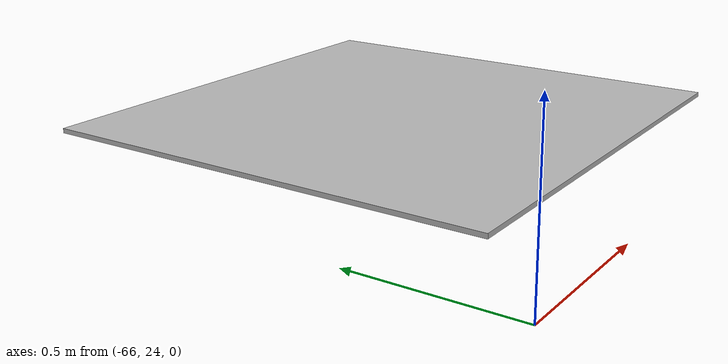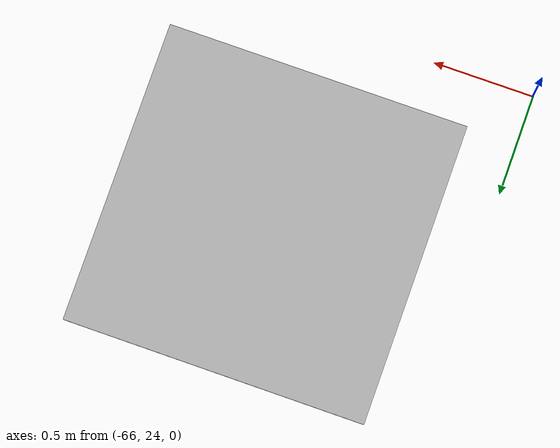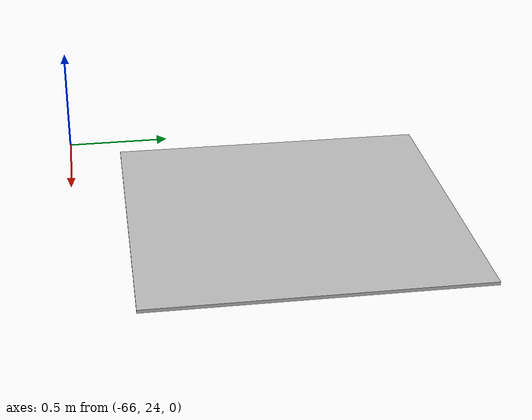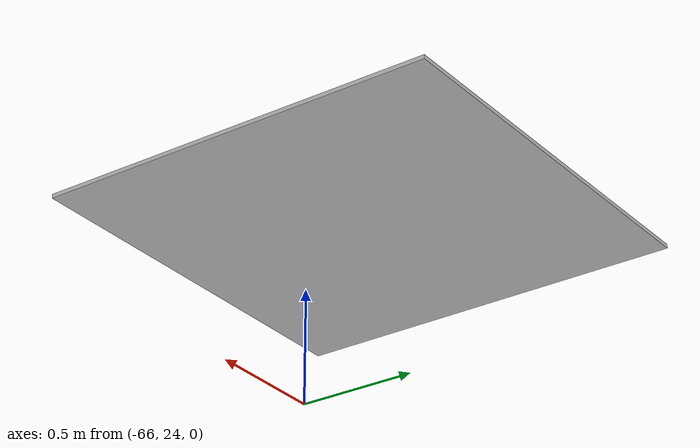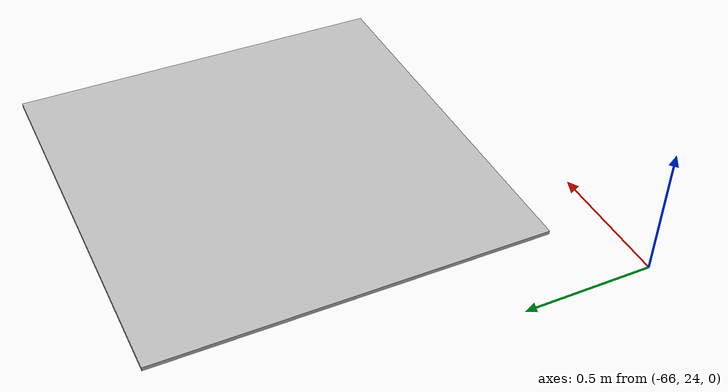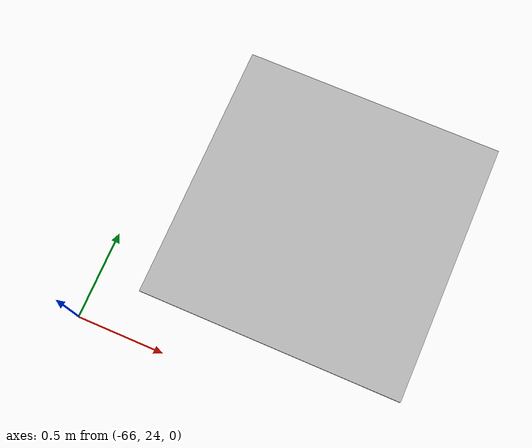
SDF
<?xml version="1.0" ?>
<sdf version="1.5">
	<model name="target_square">
    		<static>true</static>
    		<link name="link">
	      		<pose>-65 25 0.05 0 0 0</pose>
	      		<visual name="visual">
				<geometry>
					<box>
						<size>1.5 1.5 .015</size>
					</box>
				</geometry>
				<collision>
					<box>
						<size>1.5 1.5 .015</size>
					</box>
				</collision>
				<material>
					<script>
						<uri>model://target_square/materials/scripts</uri>
						<uri>model://target_square/materials/textures</uri>
						<name>target_square/Image</name>
					</script>
				</material>
	      		</visual>
    		</link>
    		<plugin name="mark_driver" filename="libtemplate_plugin.so">
	      		<shape>eight_simple</shape>
	    	</plugin>
  	</model>
</sdf>
